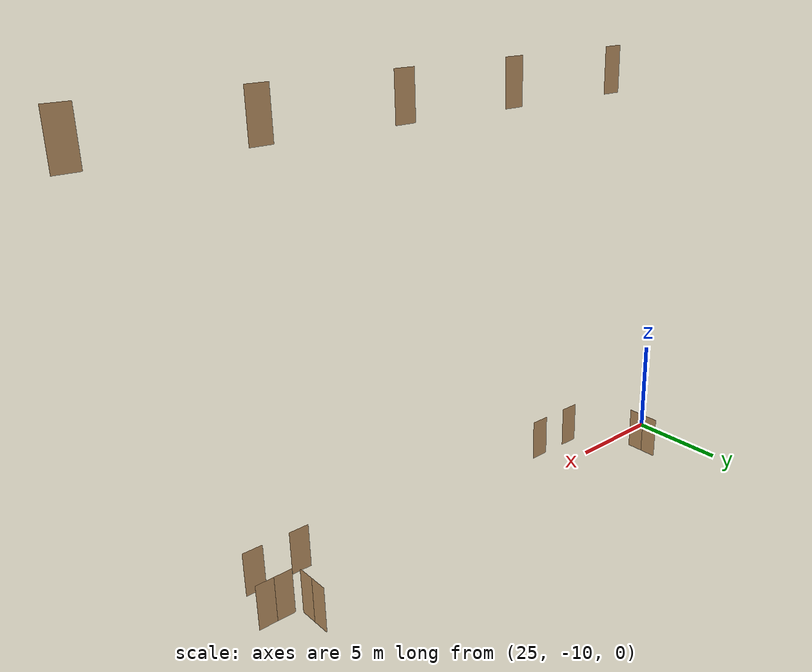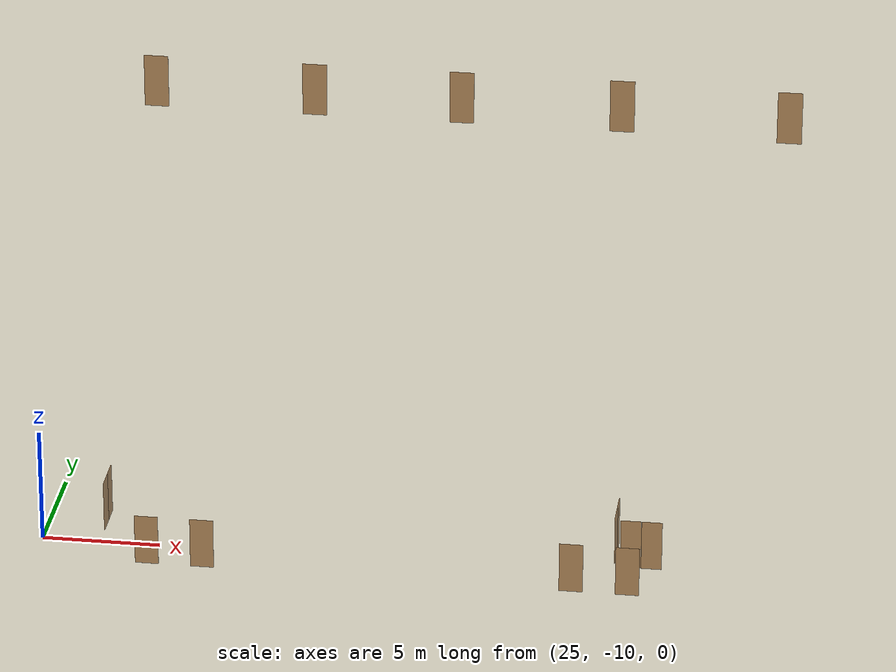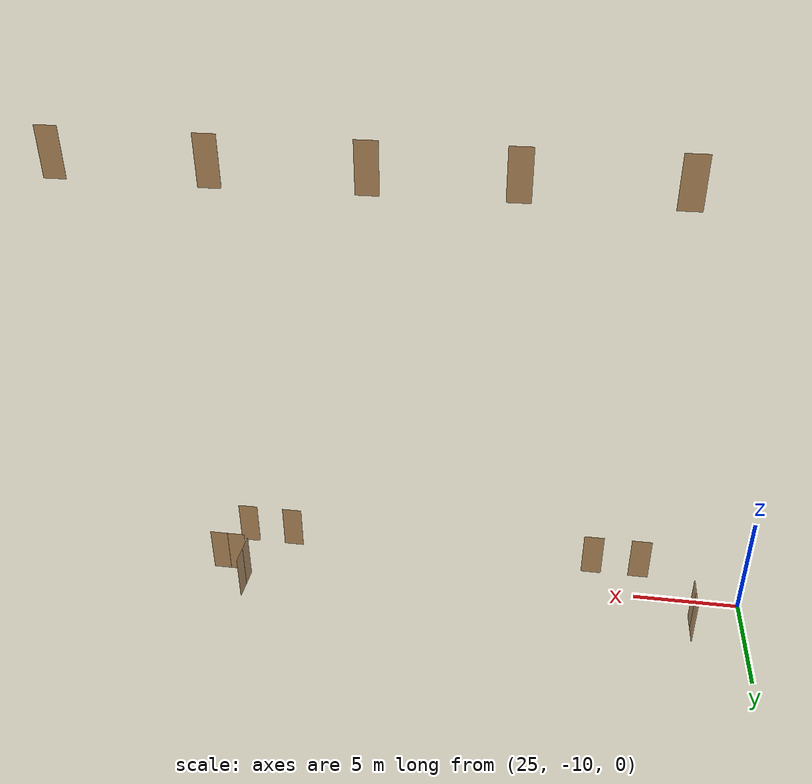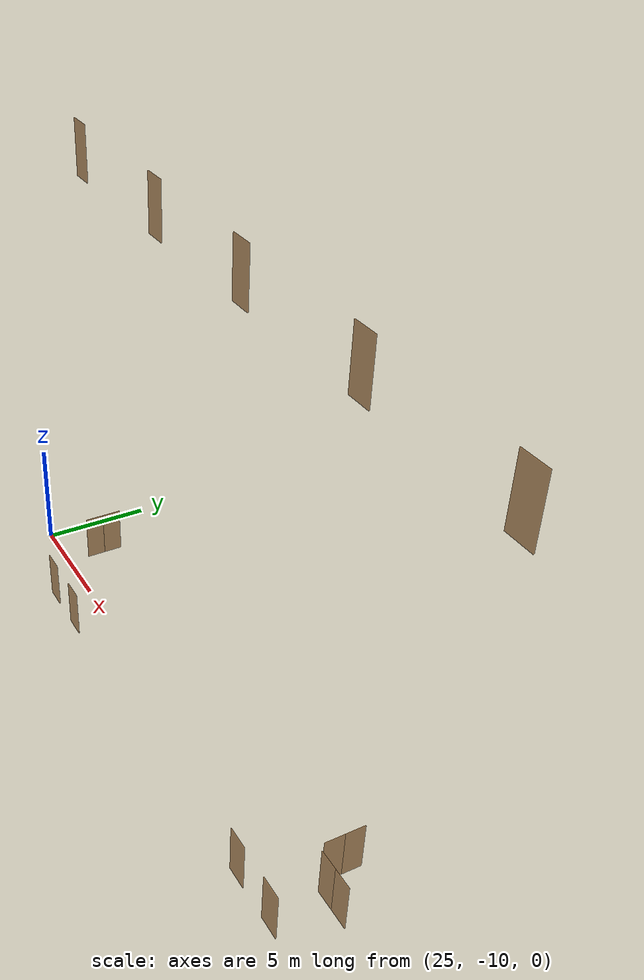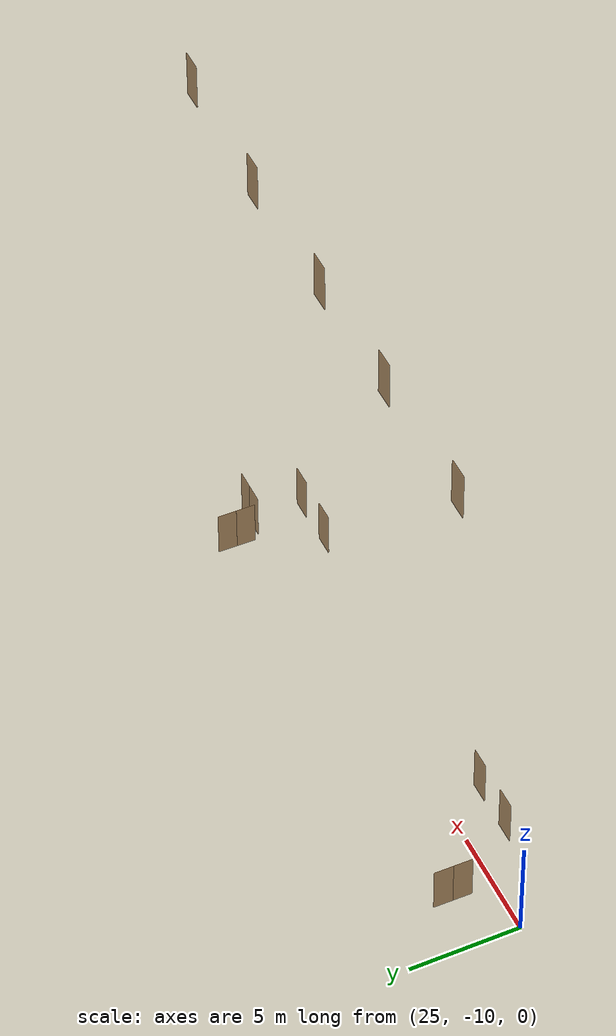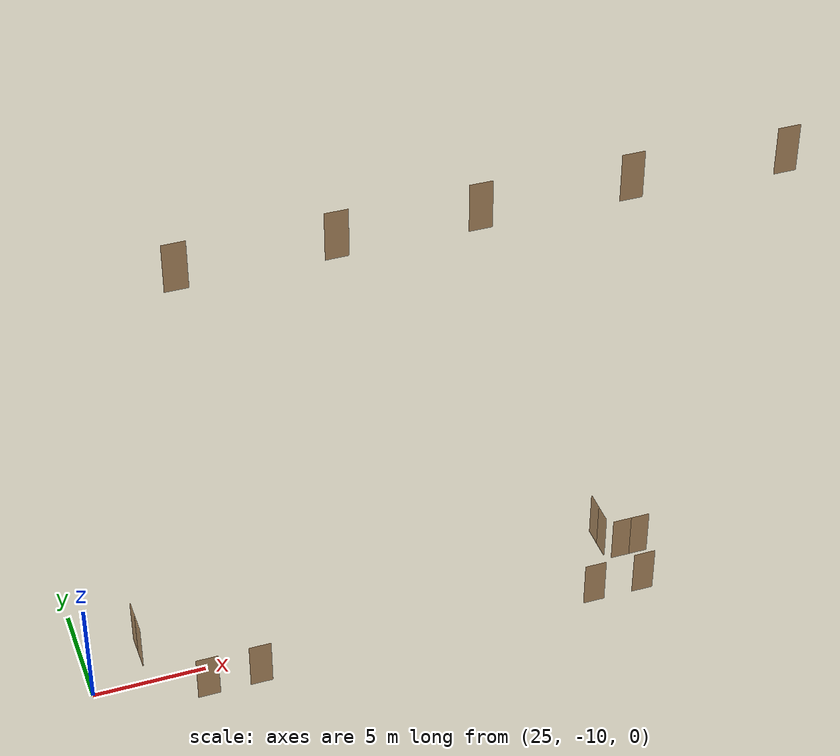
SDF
<sdf version="1.7">
 <world name="sim_world">
  <model name="l1_door17">
   <pose>27.450000000000003 -8.125 0.0 0 0 -1.5707963267948966</pose>
   <link name="right">
    <pose>-0.4375 0 1.11 0 0 0</pose>
    <visual name="right_visual">
     <geometry><box><size>0.865 0.03 2.2</size></box></geometry>
     <material>
      <ambient>0.5 0.25 0 0.6</ambient>
      <diffuse>0.5 0.25 0 0.6</diffuse>
      <pbr><metal><metalness>0.0</metalness></metal></pbr>
     </material>
    </visual>
    <collision name="right_collision">
     <geometry><box><size>0.865 0.03 2.2</size></box></geometry>
     <surface><contact><collide_bitmask>0x02</collide_bitmask></contact></surface>
    </collision>
    <inertial>
     <mass>50.0</mass>
     <inertia><ixx>20.17041666666667</ixx><iyy>23.284270833333338</iyy><izz>3.121354166666667</izz></inertia>
    </inertial>
   </link>
   <joint name="right_joint" type="revolute">
    <parent>world</parent>
    <child>right</child>
    <axis><xyz>0 0 1</xyz><limit><lower>0</lower><upper>1.57</upper></limit></axis>
    <pose>-0.4375 0 0 0 0 0</pose>
   </joint>
   <link name="left">
    <pose>0.4375 0 1.11 0 0 0</pose>
    <visual name="left_visual">
     <geometry><box><size>0.865 0.03 2.2</size></box></geometry>
     <material>
      <ambient>0.5 0.25 0 0.6</ambient>
      <diffuse>0.5 0.25 0 0.6</diffuse>
      <pbr><metal><metalness>0.0</metalness></metal></pbr>
     </material>
    </visual>
    <collision name="left_collision">
     <geometry><box><size>0.865 0.03 2.2</size></box></geometry>
     <surface><contact><collide_bitmask>0x02</collide_bitmask></contact></surface>
    </collision>
    <inertial>
     <mass>50.0</mass>
     <inertia><ixx>20.17041666666667</ixx><iyy>23.284270833333338</iyy><izz>3.121354166666667</izz></inertia>
    </inertial>
   </link>
   <joint name="left_joint" type="revolute">
    <parent>world</parent>
    <child>left</child>
    <axis><xyz>0 0 1</xyz><limit><lower>-1.57</lower><upper>0</upper></limit></axis>
    <pose>0.4375 0 0 0 0 0</pose>
   </joint>
   <plugin name="door" filename="libdoor.so">
    <v_max_door>0.5</v_max_door>
    <a_max_door>0.3</a_max_door>
    <a_nom_door>0.15</a_nom_door>
    <dx_min_door>0.01</dx_min_door>
    <f_max_door>500.0</f_max_door>
    <door name="l1_door17" type="DoubleSwingDoor" left_joint_name="left_joint" right_joint_name="right_joint"/>
   </plugin>
  </model>
  <model name="l1_door16">
   <pose>49.225 -8.125 0.0 0 0 1.5707963267948966</pose>
   <link name="right">
    <pose>-0.4375 0 1.11 0 0 0</pose>
    <visual name="right_visual">
     <geometry><box><size>0.865 0.03 2.2</size></box></geometry>
     <material>
      <ambient>0.5 0.25 0 0.6</ambient>
      <diffuse>0.5 0.25 0 0.6</diffuse>
      <pbr><metal><metalness>0.0</metalness></metal></pbr>
     </material>
    </visual>
    <collision name="right_collision">
     <geometry><box><size>0.865 0.03 2.2</size></box></geometry>
     <surface><contact><collide_bitmask>0x02</collide_bitmask></contact></surface>
    </collision>
    <inertial>
     <mass>50.0</mass>
     <inertia><ixx>20.17041666666667</ixx><iyy>23.284270833333338</iyy><izz>3.121354166666667</izz></inertia>
    </inertial>
   </link>
   <joint name="right_joint" type="revolute">
    <parent>world</parent>
    <child>right</child>
    <axis><xyz>0 0 1</xyz><limit><lower>0</lower><upper>1.57</upper></limit></axis>
    <pose>-0.4375 0 0 0 0 0</pose>
   </joint>
   <link name="left">
    <pose>0.4375 0 1.11 0 0 0</pose>
    <visual name="left_visual">
     <geometry><box><size>0.865 0.03 2.2</size></box></geometry>
     <material>
      <ambient>0.5 0.25 0 0.6</ambient>
      <diffuse>0.5 0.25 0 0.6</diffuse>
      <pbr><metal><metalness>0.0</metalness></metal></pbr>
     </material>
    </visual>
    <collision name="left_collision">
     <geometry><box><size>0.865 0.03 2.2</size></box></geometry>
     <surface><contact><collide_bitmask>0x02</collide_bitmask></contact></surface>
    </collision>
    <inertial>
     <mass>50.0</mass>
     <inertia><ixx>20.17041666666667</ixx><iyy>23.284270833333338</iyy><izz>3.121354166666667</izz></inertia>
    </inertial>
   </link>
   <joint name="left_joint" type="revolute">
    <parent>world</parent>
    <child>left</child>
    <axis><xyz>0 0 1</xyz><limit><lower>-1.57</lower><upper>0</upper></limit></axis>
    <pose>0.4375 0 0 0 0 0</pose>
   </joint>
   <plugin name="door" filename="libdoor.so">
    <v_max_door>0.5</v_max_door>
    <a_max_door>0.3</a_max_door>
    <a_nom_door>0.15</a_nom_door>
    <dx_min_door>0.01</dx_min_door>
    <f_max_door>500.0</f_max_door>
    <door name="l1_door16" type="DoubleSwingDoor" left_joint_name="left_joint" right_joint_name="right_joint"/>
   </plugin>
  </model>
  <model name="l1_door15">
   <pose>50.35 -9.25 0.0 0 0 3.141592653589793</pose>
   <link name="right">
    <pose>-0.4375 0 1.11 0 0 0</pose>
    <visual name="right_visual">
     <geometry><box><size>0.865 0.03 2.2</size></box></geometry>
     <material>
      <ambient>0.5 0.25 0 0.6</ambient>
      <diffuse>0.5 0.25 0 0.6</diffuse>
      <pbr><metal><metalness>0.0</metalness></metal></pbr>
     </material>
    </visual>
    <collision name="right_collision">
     <geometry><box><size>0.865 0.03 2.2</size></box></geometry>
     <surface><contact><collide_bitmask>0x02</collide_bitmask></contact></surface>
    </collision>
    <inertial>
     <mass>50.0</mass>
     <inertia><ixx>20.17041666666667</ixx><iyy>23.284270833333338</iyy><izz>3.121354166666667</izz></inertia>
    </inertial>
   </link>
   <joint name="right_joint" type="revolute">
    <parent>world</parent>
    <child>right</child>
    <axis><xyz>0 0 1</xyz><limit><lower>0</lower><upper>1.57</upper></limit></axis>
    <pose>-0.4375 0 0 0 0 0</pose>
   </joint>
   <link name="left">
    <pose>0.4375 0 1.11 0 0 0</pose>
    <visual name="left_visual">
     <geometry><box><size>0.865 0.03 2.2</size></box></geometry>
     <material>
      <ambient>0.5 0.25 0 0.6</ambient>
      <diffuse>0.5 0.25 0 0.6</diffuse>
      <pbr><metal><metalness>0.0</metalness></metal></pbr>
     </material>
    </visual>
    <collision name="left_collision">
     <geometry><box><size>0.865 0.03 2.2</size></box></geometry>
     <surface><contact><collide_bitmask>0x02</collide_bitmask></contact></surface>
    </collision>
    <inertial>
     <mass>50.0</mass>
     <inertia><ixx>20.17041666666667</ixx><iyy>23.284270833333338</iyy><izz>3.121354166666667</izz></inertia>
    </inertial>
   </link>
   <joint name="left_joint" type="revolute">
    <parent>world</parent>
    <child>left</child>
    <axis><xyz>0 0 1</xyz><limit><lower>-1.57</lower><upper>0</upper></limit></axis>
    <pose>0.4375 0 0 0 0 0</pose>
   </joint>
   <plugin name="door" filename="libdoor.so">
    <v_max_door>0.5</v_max_door>
    <a_max_door>0.3</a_max_door>
    <a_nom_door>0.15</a_nom_door>
    <dx_min_door>0.01</dx_min_door>
    <f_max_door>500.0</f_max_door>
    <door name="l1_door15" type="DoubleSwingDoor" left_joint_name="left_joint" right_joint_name="right_joint"/>
   </plugin>
  </model>
  <model name="dining_4">
   <pose>29.75 -11.600000000000001 0.0 0 0 3.141592653589793</pose>
   <plugin name="door" filename="libdoor.so">
    <v_max_door>0.5</v_max_door>
    <a_max_door>0.3</a_max_door>
    <a_nom_door>0.15</a_nom_door>
    <dx_min_door>0.01</dx_min_door>
    <f_max_door>500.0</f_max_door>
    <door name="dining_4" type="SwingDoor" left_joint_name="left_joint" right_joint_name="empty_joint"/>
   </plugin>
   <link name="left">
    <pose>0 0 1.11 0 0 0</pose>
    <visual name="left_visual">
     <geometry><box><size>0.99 0.03 2.2</size></box></geometry>
     <material>
      <ambient>0.5 0.25 0 0.6</ambient>
      <diffuse>0.5 0.25 0 0.6</diffuse>
      <pbr><metal><metalness>0.0</metalness></metal></pbr>
     </material>
    </visual>
    <collision name="left_collision">
     <geometry><box><size>0.99 0.03 2.2</size></box></geometry>
     <surface><contact><collide_bitmask>0x02</collide_bitmask></contact></surface>
    </collision>
    <inertial>
     <mass>50.0</mass>
     <inertia><ixx>20.17041666666667</ixx><iyy>24.250416666666673</iyy><izz>4.0875</izz></inertia>
    </inertial>
   </link>
   <joint name="left_joint" type="revolute">
    <parent>world</parent>
    <child>left</child>
    <axis><xyz>0 0 1</xyz><limit><lower>-1.57</lower><upper>0</upper></limit></axis>
    <pose>0.5 0 0 0 0 0</pose>
   </joint>
  </model>
  <model name="dining_3">
   <pose>32.1 -11.600000000000001 0.0 0 0 0.0</pose>
   <plugin name="door" filename="libdoor.so">
    <v_max_door>0.5</v_max_door>
    <a_max_door>0.3</a_max_door>
    <a_nom_door>0.15</a_nom_door>
    <dx_min_door>0.01</dx_min_door>
    <f_max_door>500.0</f_max_door>
    <door name="dining_3" type="SwingDoor" left_joint_name="empty_joint" right_joint_name="right_joint"/>
   </plugin>
   <link name="right">
    <pose>0 0 1.11 0 0 0</pose>
    <visual name="right_visual">
     <geometry><box><size>0.99 0.03 2.2</size></box></geometry>
     <material>
      <ambient>0.5 0.25 0 0.6</ambient>
      <diffuse>0.5 0.25 0 0.6</diffuse>
      <pbr><metal><metalness>0.0</metalness></metal></pbr>
     </material>
    </visual>
    <collision name="right_collision">
     <geometry><box><size>0.99 0.03 2.2</size></box></geometry>
     <surface><contact><collide_bitmask>0x02</collide_bitmask></contact></surface>
    </collision>
    <inertial>
     <mass>50.0</mass>
     <inertia><ixx>20.17041666666667</ixx><iyy>24.250416666666673</iyy><izz>4.0875</izz></inertia>
    </inertial>
   </link>
   <joint name="right_joint" type="revolute">
    <parent>world</parent>
    <child>right</child>
    <axis><xyz>0 0 1</xyz><limit><lower>0</lower><upper>1.57</upper></limit></axis>
    <pose>0.5 0 0 0 0 0</pose>
   </joint>
  </model>
  <model name="dining_2">
   <pose>47.650000000000006 -11.600000000000001 0.0 0 0 3.141592653589793</pose>
   <plugin name="door" filename="libdoor.so">
    <v_max_door>0.5</v_max_door>
    <a_max_door>0.3</a_max_door>
    <a_nom_door>0.15</a_nom_door>
    <dx_min_door>0.01</dx_min_door>
    <f_max_door>500.0</f_max_door>
    <door name="dining_2" type="SwingDoor" left_joint_name="left_joint" right_joint_name="empty_joint"/>
   </plugin>
   <link name="left">
    <pose>0 0 1.11 0 0 0</pose>
    <visual name="left_visual">
     <geometry><box><size>0.99 0.03 2.2</size></box></geometry>
     <material>
      <ambient>0.5 0.25 0 0.6</ambient>
      <diffuse>0.5 0.25 0 0.6</diffuse>
      <pbr><metal><metalness>0.0</metalness></metal></pbr>
     </material>
    </visual>
    <collision name="left_collision">
     <geometry><box><size>0.99 0.03 2.2</size></box></geometry>
     <surface><contact><collide_bitmask>0x02</collide_bitmask></contact></surface>
    </collision>
    <inertial>
     <mass>50.0</mass>
     <inertia><ixx>20.17041666666667</ixx><iyy>24.250416666666673</iyy><izz>4.0875</izz></inertia>
    </inertial>
   </link>
   <joint name="left_joint" type="revolute">
    <parent>world</parent>
    <child>left</child>
    <axis><xyz>0 0 1</xyz><limit><lower>-1.57</lower><upper>0</upper></limit></axis>
    <pose>0.5 0 0 0 0 0</pose>
   </joint>
  </model>
  <model name="dining_1">
   <pose>50.0 -11.600000000000001 0.0 0 0 0.0</pose>
   <plugin name="door" filename="libdoor.so">
    <v_max_door>0.5</v_max_door>
    <a_max_door>0.3</a_max_door>
    <a_nom_door>0.15</a_nom_door>
    <dx_min_door>0.01</dx_min_door>
    <f_max_door>500.0</f_max_door>
    <door name="dining_1" type="SwingDoor" left_joint_name="empty_joint" right_joint_name="right_joint"/>
   </plugin>
   <link name="right">
    <pose>0 0 1.11 0 0 0</pose>
    <visual name="right_visual">
     <geometry><box><size>0.99 0.03 2.2</size></box></geometry>
     <material>
      <ambient>0.5 0.25 0 0.6</ambient>
      <diffuse>0.5 0.25 0 0.6</diffuse>
      <pbr><metal><metalness>0.0</metalness></metal></pbr>
     </material>
    </visual>
    <collision name="right_collision">
     <geometry><box><size>0.99 0.03 2.2</size></box></geometry>
     <surface><contact><collide_bitmask>0x02</collide_bitmask></contact></surface>
    </collision>
    <inertial>
     <mass>50.0</mass>
     <inertia><ixx>20.17041666666667</ixx><iyy>24.250416666666673</iyy><izz>4.0875</izz></inertia>
    </inertial>
   </link>
   <joint name="right_joint" type="revolute">
    <parent>world</parent>
    <child>right</child>
    <axis><xyz>0 0 1</xyz><limit><lower>0</lower><upper>1.57</upper></limit></axis>
    <pose>0.5 0 0 0 0 0</pose>
   </joint>
  </model>
  <model name="room13_door">
   <pose>30.2 -9.25 20.0 0 0 0.0</pose>
   <plugin name="door" filename="libdoor.so">
    <v_max_door>0.5</v_max_door>
    <a_max_door>0.3</a_max_door>
    <a_nom_door>0.15</a_nom_door>
    <dx_min_door>0.01</dx_min_door>
    <f_max_door>500.0</f_max_door>
    <door name="room13_door" type="SwingDoor" left_joint_name="empty_joint" right_joint_name="right_joint"/>
   </plugin>
   <link name="right">
    <pose>0 0 1.11 0 0 0</pose>
    <visual name="right_visual">
     <geometry><box><size>0.99 0.03 2.2</size></box></geometry>
     <material>
      <ambient>0.5 0.25 0 0.6</ambient>
      <diffuse>0.5 0.25 0 0.6</diffuse>
      <pbr><metal><metalness>0.0</metalness></metal></pbr>
     </material>
    </visual>
    <collision name="right_collision">
     <geometry><box><size>0.99 0.03 2.2</size></box></geometry>
     <surface><contact><collide_bitmask>0x02</collide_bitmask></contact></surface>
    </collision>
    <inertial>
     <mass>50.0</mass>
     <inertia><ixx>20.17041666666667</ixx><iyy>24.250416666666673</iyy><izz>4.0875</izz></inertia>
    </inertial>
   </link>
   <joint name="right_joint" type="revolute">
    <parent>world</parent>
    <child>right</child>
    <axis><xyz>0 0 1</xyz><limit><lower>0</lower><upper>1.57</upper></limit></axis>
    <pose>0.5 0 0 0 0 0</pose>
   </joint>
  </model>
  <model name="room14_door">
   <pose>36.7 -9.25 20.0 0 0 3.141592653589793</pose>
   <plugin name="door" filename="libdoor.so">
    <v_max_door>0.5</v_max_door>
    <a_max_door>0.3</a_max_door>
    <a_nom_door>0.15</a_nom_door>
    <dx_min_door>0.01</dx_min_door>
    <f_max_door>500.0</f_max_door>
    <door name="room14_door" type="SwingDoor" left_joint_name="left_joint" right_joint_name="empty_joint"/>
   </plugin>
   <link name="left">
    <pose>0 0 1.11 0 0 0</pose>
    <visual name="left_visual">
     <geometry><box><size>0.99 0.03 2.2</size></box></geometry>
     <material>
      <ambient>0.5 0.25 0 0.6</ambient>
      <diffuse>0.5 0.25 0 0.6</diffuse>
      <pbr><metal><metalness>0.0</metalness></metal></pbr>
     </material>
    </visual>
    <collision name="left_collision">
     <geometry><box><size>0.99 0.03 2.2</size></box></geometry>
     <surface><contact><collide_bitmask>0x02</collide_bitmask></contact></surface>
    </collision>
    <inertial>
     <mass>50.0</mass>
     <inertia><ixx>20.17041666666667</ixx><iyy>24.250416666666673</iyy><izz>4.0875</izz></inertia>
    </inertial>
   </link>
   <joint name="left_joint" type="revolute">
    <parent>world</parent>
    <child>left</child>
    <axis><xyz>0 0 1</xyz><limit><lower>-1.57</lower><upper>0</upper></limit></axis>
    <pose>0.5 0 0 0 0 0</pose>
   </joint>
  </model>
  <model name="room15_door">
   <pose>42.7 -9.25 20.0 0 0 0.0</pose>
   <plugin name="door" filename="libdoor.so">
    <v_max_door>0.5</v_max_door>
    <a_max_door>0.3</a_max_door>
    <a_nom_door>0.15</a_nom_door>
    <dx_min_door>0.01</dx_min_door>
    <f_max_door>500.0</f_max_door>
    <door name="room15_door" type="SwingDoor" left_joint_name="empty_joint" right_joint_name="right_joint"/>
   </plugin>
   <link name="right">
    <pose>0 0 1.11 0 0 0</pose>
    <visual name="right_visual">
     <geometry><box><size>0.99 0.03 2.2</size></box></geometry>
     <material>
      <ambient>0.5 0.25 0 0.6</ambient>
      <diffuse>0.5 0.25 0 0.6</diffuse>
      <pbr><metal><metalness>0.0</metalness></metal></pbr>
     </material>
    </visual>
    <collision name="right_collision">
     <geometry><box><size>0.99 0.03 2.2</size></box></geometry>
     <surface><contact><collide_bitmask>0x02</collide_bitmask></contact></surface>
    </collision>
    <inertial>
     <mass>50.0</mass>
     <inertia><ixx>20.17041666666667</ixx><iyy>24.250416666666673</iyy><izz>4.0875</izz></inertia>
    </inertial>
   </link>
   <joint name="right_joint" type="revolute">
    <parent>world</parent>
    <child>right</child>
    <axis><xyz>0 0 1</xyz><limit><lower>0</lower><upper>1.57</upper></limit></axis>
    <pose>0.5 0 0 0 0 0</pose>
   </joint>
  </model>
  <model name="room16_door">
   <pose>49.2 -9.25 20.0 0 0 3.141592653589793</pose>
   <plugin name="door" filename="libdoor.so">
    <v_max_door>0.5</v_max_door>
    <a_max_door>0.3</a_max_door>
    <a_nom_door>0.15</a_nom_door>
    <dx_min_door>0.01</dx_min_door>
    <f_max_door>500.0</f_max_door>
    <door name="room16_door" type="SwingDoor" left_joint_name="left_joint" right_joint_name="empty_joint"/>
   </plugin>
   <link name="left">
    <pose>0 0 1.11 0 0 0</pose>
    <visual name="left_visual">
     <geometry><box><size>0.99 0.03 2.2</size></box></geometry>
     <material>
      <ambient>0.5 0.25 0 0.6</ambient>
      <diffuse>0.5 0.25 0 0.6</diffuse>
      <pbr><metal><metalness>0.0</metalness></metal></pbr>
     </material>
    </visual>
    <collision name="left_collision">
     <geometry><box><size>0.99 0.03 2.2</size></box></geometry>
     <surface><contact><collide_bitmask>0x02</collide_bitmask></contact></surface>
    </collision>
    <inertial>
     <mass>50.0</mass>
     <inertia><ixx>20.17041666666667</ixx><iyy>24.250416666666673</iyy><izz>4.0875</izz></inertia>
    </inertial>
   </link>
   <joint name="left_joint" type="revolute">
    <parent>world</parent>
    <child>left</child>
    <axis><xyz>0 0 1</xyz><limit><lower>-1.57</lower><upper>0</upper></limit></axis>
    <pose>0.5 0 0 0 0 0</pose>
   </joint>
  </model>
  <model name="room17_door">
   <pose>55.95 -9.5 20.0 0 0 0.0</pose>
   <plugin name="door" filename="libdoor.so">
    <v_max_door>0.5</v_max_door>
    <a_max_door>0.3</a_max_door>
    <a_nom_door>0.15</a_nom_door>
    <dx_min_door>0.01</dx_min_door>
    <f_max_door>500.0</f_max_door>
    <door name="room17_door" type="SwingDoor" left_joint_name="empty_joint" right_joint_name="right_joint"/>
   </plugin>
   <link name="right">
    <pose>0 0 1.11 0 0 0</pose>
    <visual name="right_visual">
     <geometry><box><size>0.99 0.03 2.2</size></box></geometry>
     <material>
      <ambient>0.5 0.25 0 0.6</ambient>
      <diffuse>0.5 0.25 0 0.6</diffuse>
      <pbr><metal><metalness>0.0</metalness></metal></pbr>
     </material>
    </visual>
    <collision name="right_collision">
     <geometry><box><size>0.99 0.03 2.2</size></box></geometry>
     <surface><contact><collide_bitmask>0x02</collide_bitmask></contact></surface>
    </collision>
    <inertial>
     <mass>50.0</mass>
     <inertia><ixx>20.17041666666667</ixx><iyy>24.250416666666673</iyy><izz>4.0875</izz></inertia>
    </inertial>
   </link>
   <joint name="right_joint" type="revolute">
    <parent>world</parent>
    <child>right</child>
    <axis><xyz>0 0 1</xyz><limit><lower>0</lower><upper>1.57</upper></limit></axis>
    <pose>0.5 0 0 0 0 0</pose>
   </joint>
  </model>
 </world>
</sdf>
